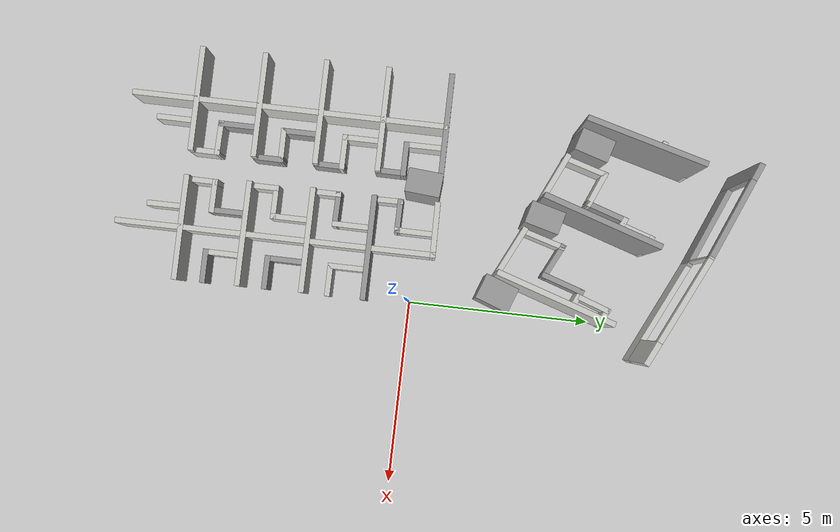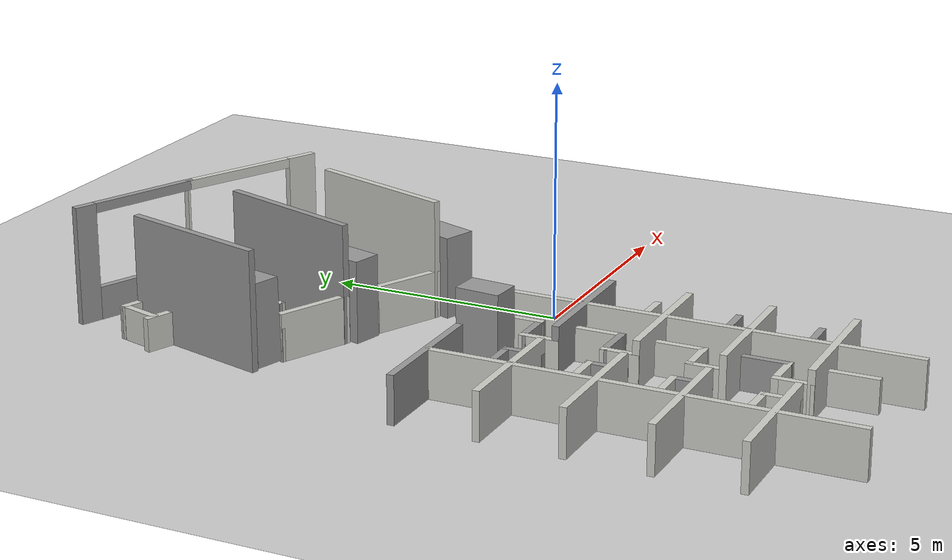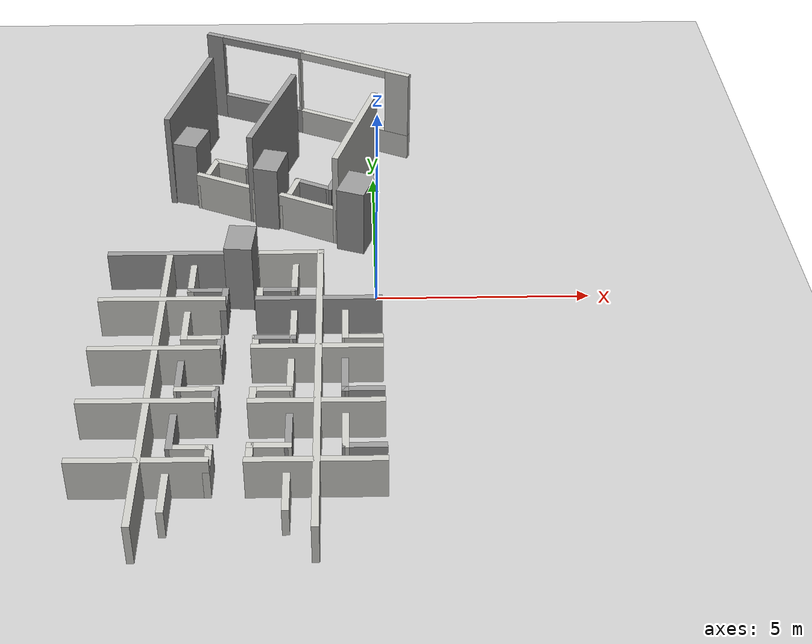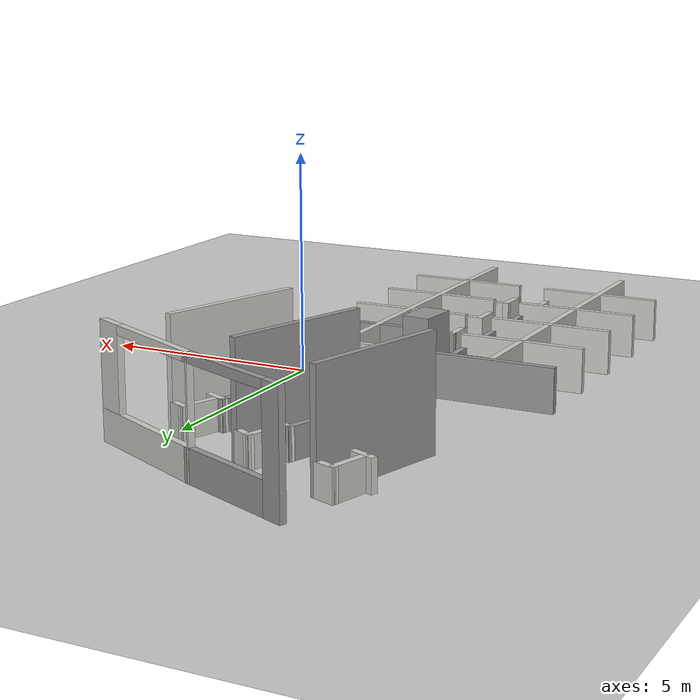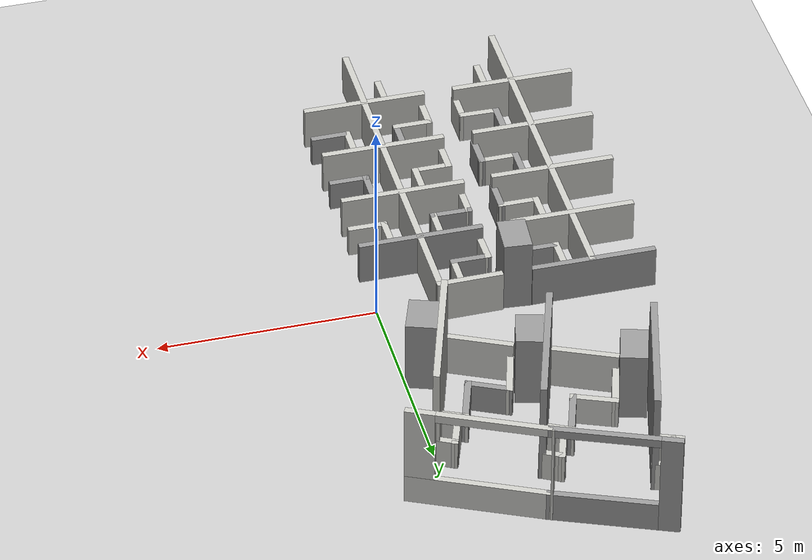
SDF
<sdf version="1.7">
 <world name="default">
  <model name="ground_plane">
   <static>1</static>
   <link name="link">
    <collision name="collision">
     <geometry><plane><normal>0 0 1</normal><size>100 100</size></plane></geometry>
     <surface><friction><ode><mu>100</mu><mu2>50</mu2></ode></friction></surface>
    </collision>
    <visual name="visual">
     <cast_shadows>0</cast_shadows>
     <geometry><plane><normal>0 0 1</normal><size>100 100</size></plane></geometry>
     <material>
      <script><uri>file://media/materials/scripts/gazebo.material</uri><name>Gazebo/Grey</name></script>
     </material>
    </visual>
   </link>
  </model>
  <model name="batclab">
   <pose>-2.42536 -0.386876 0 0 -0 0</pose>
   <link name="Wall_106">
    <collision name="Wall_106_Collision">
     <geometry><box><size>2.865 0.15 1</size></box></geometry>
     <pose>0 0 0.5 0 -0 0</pose>
    </collision>
    <visual name="Wall_106_Visual">
     <pose>0 0 0.5 0 -0 0</pose>
     <geometry><box><size>2.865 0.15 1</size></box></geometry>
     <material>
      <script><uri>file://media/materials/scripts/gazebo.material</uri><name>Gazebo/CeilingTiled</name></script>
      <ambient>1 1 1 1</ambient>
     </material>
     <meta><layer>0</layer></meta>
    </visual>
    <pose>-2.42436 -5.95096 0 0 -0 0</pose>
   </link>
   <link name="Wall_128">
    <collision name="Wall_128_Collision">
     <geometry><box><size>1.13401 0.15 0.7</size></box></geometry>
     <pose>0 0 0.35 0 -0 0</pose>
    </collision>
    <visual name="Wall_128_Visual">
     <pose>0 0 0.35 0 -0 0</pose>
     <geometry><box><size>1.13401 0.15 0.7</size></box></geometry>
     <material>
      <script><uri>file://media/materials/scripts/gazebo.material</uri><name>Gazebo/CeilingTiled</name></script>
      <ambient>1 1 1 1</ambient>
     </material>
     <meta><layer>0</layer></meta>
    </visual>
    <pose>-1.86842 -6.49961 0 0 -0 -1.57486</pose>
   </link>
   <link name="Wall_136">
    <collision name="Wall_136_Collision">
     <geometry><box><size>1.15946 0.15 0.7</size></box></geometry>
     <pose>0 0 0.35 0 -0 0</pose>
    </collision>
    <visual name="Wall_136_Visual">
     <pose>0 0 0.35 0 -0 0</pose>
     <geometry><box><size>1.15946 0.15 0.7</size></box></geometry>
     <material>
      <script><uri>file://media/materials/scripts/gazebo.material</uri><name>Gazebo/Grey</name></script>
      <ambient>1 1 1 1</ambient>
     </material>
     <meta><layer>0</layer></meta>
    </visual>
    <pose>-1.86392 -4.77611 0 0 -0 -1.57377</pose>
   </link>
   <link name="Wall_137">
    <collision name="Wall_137_Collision">
     <geometry><box><size>0.957447 0.15 0.7</size></box></geometry>
     <pose>0 0 0.35 0 -0 0</pose>
    </collision>
    <visual name="Wall_137_Visual">
     <pose>0 0 0.35 0 -0 0</pose>
     <geometry><box><size>0.957447 0.15 0.7</size></box></geometry>
     <material>
      <script><uri>file://media/materials/scripts/gazebo.material</uri><name>Gazebo/CeilingTiled</name></script>
      <ambient>1 1 1 1</ambient>
     </material>
     <meta><layer>0</layer></meta>
    </visual>
    <pose>-1.46192 -5.28961 0 0 -0 -0.022301</pose>
   </link>
   <link name="Wall_138">
    <collision name="Wall_138_Collision">
     <geometry><box><size>0.804299 0.15 0.7</size></box></geometry>
     <pose>0 0 0.35 0 -0 0</pose>
    </collision>
    <visual name="Wall_138_Visual">
     <pose>0 0 0.35 0 -0 0</pose>
     <geometry><box><size>0.804299 0.15 0.7</size></box></geometry>
     <material>
      <script><uri>file://media/materials/scripts/gazebo.material</uri><name>Gazebo/CeilingTiled</name></script>
      <ambient>1 1 1 1</ambient>
     </material>
     <meta><layer>0</layer></meta>
    </visual>
    <pose>-1.05992 -5.62561 0 0 -0 -1.57538</pose>
   </link>
   <link name="Wall_144">
    <collision name="Wall_144_Collision">
     <geometry><box><size>1.08532 0.15 0.7</size></box></geometry>
     <pose>0 0 0.35 0 -0 0</pose>
    </collision>
    <visual name="Wall_144_Visual">
     <pose>0 0 0.35 0 -0 0</pose>
     <geometry><box><size>1.08532 0.15 0.7</size></box></geometry>
     <material>
      <script><uri>file://media/materials/scripts/gazebo.material</uri><name>Gazebo/Grey</name></script>
      <ambient>1 1 1 1</ambient>
     </material>
     <meta><layer>0</layer></meta>
    </visual>
    <pose>-1.85542 -3.07811 0 0 -0 -1.5708</pose>
   </link>
   <link name="Wall_145">
    <collision name="Wall_145_Collision">
     <geometry><box><size>0.957447 0.15 0.7</size></box></geometry>
     <pose>0 0 0.35 0 -0 0</pose>
    </collision>
    <visual name="Wall_145_Visual">
     <pose>0 0 0.35 0 -0 0</pose>
     <geometry><box><size>0.957447 0.15 0.7</size></box></geometry>
     <material>
      <script><uri>file://media/materials/scripts/gazebo.material</uri><name>Gazebo/CeilingTiled</name></script>
      <ambient>1 1 1 1</ambient>
     </material>
     <meta><layer>0</layer></meta>
    </visual>
    <pose>-1.45142 -3.54211 0 0 -0 0.008663</pose>
   </link>
   <link name="Wall_146">
    <collision name="Wall_146_Collision">
     <geometry><box><size>0.830012 0.15 0.7</size></box></geometry>
     <pose>0 0 0.35 0 -0 0</pose>
    </collision>
    <visual name="Wall_146_Visual">
     <pose>0 0 0.35 0 -0 0</pose>
     <geometry><box><size>0.830012 0.15 0.7</size></box></geometry>
     <material>
      <script><uri>file://media/materials/scripts/gazebo.material</uri><name>Gazebo/Grey</name></script>
      <ambient>1 1 1 1</ambient>
     </material>
     <meta><layer>0</layer></meta>
    </visual>
    <pose>-1.04942 -3.87861 0 0 -0 -1.57668</pose>
   </link>
   <link name="Wall_148">
    <collision name="Wall_148_Collision">
     <geometry><box><size>2.865 0.15 1</size></box></geometry>
     <pose>0 0 0.5 0 -0 0</pose>
    </collision>
    <visual name="Wall_148_Visual">
     <pose>0 0 0.5 0 -0 0</pose>
     <geometry><box><size>2.865 0.15 1</size></box></geometry>
     <material>
      <script><uri>file://media/materials/scripts/gazebo.material</uri><name>Gazebo/CeilingTiled</name></script>
      <ambient>1 1 1 1</ambient>
     </material>
     <meta><layer>0</layer></meta>
    </visual>
    <pose>-2.42292 -0.838607 0 0 -0 0</pose>
   </link>
   <link name="Wall_150">
    <collision name="Wall_150_Collision">
     <geometry><box><size>2.865 0.15 1</size></box></geometry>
     <pose>0 0 0.5 0 -0 0</pose>
    </collision>
    <visual name="Wall_150_Visual">
     <pose>0 0 0.5 0 -0 0</pose>
     <geometry><box><size>2.865 0.15 1</size></box></geometry>
     <material>
      <script><uri>file://media/materials/scripts/gazebo.material</uri><name>Gazebo/Grey</name></script>
      <ambient>1 1 1 1</ambient>
     </material>
     <meta><layer>0</layer></meta>
    </visual>
    <pose>1.09824 -0.837491 0 0 -0 0</pose>
   </link>
   <link name="Wall_152">
    <collision name="Wall_152_Collision">
     <geometry><box><size>2.865 0.15 1</size></box></geometry>
     <pose>0 0 0.5 0 -0 0</pose>
    </collision>
    <visual name="Wall_152_Visual">
     <pose>0 0 0.5 0 -0 0</pose>
     <geometry><box><size>2.865 0.15 1</size></box></geometry>
     <material>
      <script><uri>file://media/materials/scripts/gazebo.material</uri><name>Gazebo/CeilingTiled</name></script>
      <ambient>1 1 1 1</ambient>
     </material>
     <meta><layer>0</layer></meta>
    </visual>
    <pose>1.08208 -2.51461 0 0 -0 0</pose>
   </link>
   <link name="Wall_154">
    <collision name="Wall_154_Collision">
     <geometry><box><size>2.865 0.15 1</size></box></geometry>
     <pose>0 0 0.5 0 -0 0</pose>
    </collision>
    <visual name="Wall_154_Visual">
     <pose>0 0 0.5 0 -0 0</pose>
     <geometry><box><size>2.865 0.15 1</size></box></geometry>
     <material>
      <script><uri>file://media/materials/scripts/gazebo.material</uri><name>Gazebo/Grey</name></script>
      <ambient>1 1 1 1</ambient>
     </material>
     <meta><layer>0</layer></meta>
    </visual>
    <pose>-2.42906 0.887393 0 0 -0 0</pose>
   </link>
   <link name="Wall_156">
    <collision name="Wall_156_Collision">
     <geometry><box><size>1.52505 0.15 1</size></box></geometry>
     <pose>0 0 0.5 0 -0 0</pose>
    </collision>
    <visual name="Wall_156_Visual">
     <pose>0 0 0.5 0 -0 0</pose>
     <geometry><box><size>1.52505 0.15 1</size></box></geometry>
     <material>
      <script><uri>file://media/materials/scripts/gazebo.material</uri><name>Gazebo/CeilingTiled</name></script>
      <ambient>1 1 1 1</ambient>
     </material>
     <meta><layer>0</layer></meta>
    </visual>
    <pose>0.42608 0.896735 0 0 -0 0.013588</pose>
   </link>
   <link name="Wall_158">
    <collision name="Wall_158_Collision">
     <geometry><box><size>2.865 0.15 1</size></box></geometry>
     <pose>0 0 0.5 0 -0 0</pose>
    </collision>
    <visual name="Wall_158_Visual">
     <pose>0 0 0.5 0 -0 0</pose>
     <geometry><box><size>2.865 0.15 1</size></box></geometry>
     <material>
      <script><uri>file://media/materials/scripts/gazebo.material</uri><name>Gazebo/CeilingTiled</name></script>
      <ambient>1 1 1 1</ambient>
     </material>
     <meta><layer>0</layer></meta>
    </visual>
    <pose>1.09785 -4.25212 0 0 -0 0</pose>
   </link>
   <link name="Wall_160">
    <collision name="Wall_160_Collision">
     <geometry><box><size>2.865 0.15 1</size></box></geometry>
     <pose>0 0 0.5 0 -0 0</pose>
    </collision>
    <visual name="Wall_160_Visual">
     <pose>0 0 0.5 0 -0 0</pose>
     <geometry><box><size>2.865 0.15 1</size></box></geometry>
     <material>
      <script><uri>file://media/materials/scripts/gazebo.material</uri><name>Gazebo/CeilingTiled</name></script>
      <ambient>1 1 1 1</ambient>
     </material>
     <meta><layer>0</layer></meta>
    </visual>
    <pose>1.11309 -5.96131 0 0 -0 0</pose>
   </link>
   <link name="Wall_178">
    <collision name="Wall_178_Collision">
     <geometry><box><size>1.12218 0.15 0.7</size></box></geometry>
     <pose>0 0 0.35 0 -0 0</pose>
    </collision>
    <visual name="Wall_178_Visual">
     <pose>0 0 0.35 0 -0 0</pose>
     <geometry><box><size>1.12218 0.15 0.7</size></box></geometry>
     <material>
      <script><uri>file://media/materials/scripts/gazebo.material</uri><name>Gazebo/CeilingTiled</name></script>
      <ambient>1 1 1 1</ambient>
     </material>
     <meta><layer>0</layer></meta>
    </visual>
    <pose>-1.85642 0.336393 0 0 -0 -1.5708</pose>
   </link>
   <link name="Wall_179">
    <collision name="Wall_179_Collision">
     <geometry><box><size>0.950104 0.15 0.7</size></box></geometry>
     <pose>0 0 0.35 0 -0 0</pose>
    </collision>
    <visual name="Wall_179_Visual">
     <pose>0 0 0.35 0 -0 0</pose>
     <geometry><box><size>0.950104 0.15 0.7</size></box></geometry>
     <material>
      <script><uri>file://media/materials/scripts/gazebo.material</uri><name>Gazebo/Grey</name></script>
      <ambient>1 1 1 1</ambient>
     </material>
     <meta><layer>0</layer></meta>
    </visual>
    <pose>-1.45642 -0.149607 0 0 -0 0</pose>
   </link>
   <link name="Wall_180">
    <collision name="Wall_180_Collision">
     <geometry><box><size>0.840012 0.15 0.7</size></box></geometry>
     <pose>0 0 0.35 0 -0 0</pose>
    </collision>
    <visual name="Wall_180_Visual">
     <pose>0 0 0.35 0 -0 0</pose>
     <geometry><box><size>0.840012 0.15 0.7</size></box></geometry>
     <material>
      <script><uri>file://media/materials/scripts/gazebo.material</uri><name>Gazebo/Grey</name></script>
      <ambient>1 1 1 1</ambient>
     </material>
     <meta><layer>0</layer></meta>
    </visual>
    <pose>-1.05842 -0.494607 0 0 -0 -1.57659</pose>
   </link>
   <link name="Wall_186">
    <collision name="Wall_186_Collision">
     <geometry><box><size>1.10448 0.15 0.7</size></box></geometry>
     <pose>0 0 0.35 0 -0 0</pose>
    </collision>
    <visual name="Wall_186_Visual">
     <pose>0 0 0.35 0 -0 0</pose>
     <geometry><box><size>1.10448 0.15 0.7</size></box></geometry>
     <material>
      <script><uri>file://media/materials/scripts/gazebo.material</uri><name>Gazebo/CeilingTiled</name></script>
      <ambient>1 1 1 1</ambient>
     </material>
     <meta><layer>0</layer></meta>
    </visual>
    <pose>-1.86542 -1.36811 0 0 -0 -1.5708</pose>
   </link>
   <link name="Wall_187">
    <collision name="Wall_187_Collision">
     <geometry><box><size>0.969551 0.15 0.7</size></box></geometry>
     <pose>0 0 0.35 0 -0 0</pose>
    </collision>
    <visual name="Wall_187_Visual">
     <pose>0 0 0.35 0 -0 0</pose>
     <geometry><box><size>0.969551 0.15 0.7</size></box></geometry>
     <material>
      <script><uri>file://media/materials/scripts/gazebo.material</uri><name>Gazebo/CeilingTiled</name></script>
      <ambient>1 1 1 1</ambient>
     </material>
     <meta><layer>0</layer></meta>
    </visual>
    <pose>-1.45592 -1.84561 0 0 -0 0</pose>
   </link>
   <link name="Wall_188">
    <collision name="Wall_188_Collision">
     <geometry><box><size>0.846185 0.15 0.7</size></box></geometry>
     <pose>0 0 0.35 0 -0 0</pose>
    </collision>
    <visual name="Wall_188_Visual">
     <pose>0 0 0.35 0 -0 0</pose>
     <geometry><box><size>0.846185 0.15 0.7</size></box></geometry>
     <material>
      <script><uri>file://media/materials/scripts/gazebo.material</uri><name>Gazebo/Grey</name></script>
      <ambient>1 1 1 1</ambient>
     </material>
     <meta><layer>0</layer></meta>
    </visual>
    <pose>-1.04942 -2.19361 0 0 -0 -1.57942</pose>
   </link>
   <link name="Wall_190">
    <collision name="Wall_190_Collision">
     <geometry><box><size>1.13603 0.15 0.7</size></box></geometry>
     <pose>0 0 0.35 0 -0 0</pose>
    </collision>
    <visual name="Wall_190_Visual">
     <pose>0 0 0.35 0 -0 0</pose>
     <geometry><box><size>1.13603 0.15 0.7</size></box></geometry>
     <material>
      <script><uri>file://media/materials/scripts/gazebo.material</uri><name>Gazebo/CeilingTiled</name></script>
      <ambient>1 1 1 1</ambient>
     </material>
     <meta><layer>0</layer></meta>
    </visual>
    <pose>0.52508 0.350393 0 0 -0 -1.5779</pose>
   </link>
   <link name="Wall_191">
    <collision name="Wall_191_Collision">
     <geometry><box><size>0.939019 0.15 0.7</size></box></geometry>
     <pose>0 0 0.35 0 -0 0</pose>
    </collision>
    <visual name="Wall_191_Visual">
     <pose>0 0 0.35 0 -0 0</pose>
     <geometry><box><size>0.939019 0.15 0.7</size></box></geometry>
     <material>
      <script><uri>file://media/materials/scripts/gazebo.material</uri><name>Gazebo/Grey</name></script>
      <ambient>1 1 1 1</ambient>
     </material>
     <meta><layer>0</layer></meta>
    </visual>
    <pose>0.12708 -0.139607 0 0 -0 3.13399</pose>
   </link>
   <link name="Wall_192">
    <collision name="Wall_192_Collision">
     <geometry><box><size>0.846592 0.15 0.7</size></box></geometry>
     <pose>0 0 0.35 0 -0 0</pose>
    </collision>
    <visual name="Wall_192_Visual">
     <pose>0 0 0.35 0 -0 0</pose>
     <geometry><box><size>0.846592 0.15 0.7</size></box></geometry>
     <material>
      <script><uri>file://media/materials/scripts/gazebo.material</uri><name>Gazebo/CeilingTiled</name></script>
      <ambient>1 1 1 1</ambient>
     </material>
     <meta><layer>0</layer></meta>
    </visual>
    <pose>-0.26392 -0.485107 0 0 -0 -1.56075</pose>
   </link>
   <link name="Wall_194">
    <collision name="Wall_194_Collision">
     <geometry><box><size>1.10401 0.15 0.7</size></box></geometry>
     <pose>0 0 0.35 0 -0 0</pose>
    </collision>
    <visual name="Wall_194_Visual">
     <pose>0 0 0.35 0 -0 0</pose>
     <geometry><box><size>1.10401 0.15 0.7</size></box></geometry>
     <material>
      <script><uri>file://media/materials/scripts/gazebo.material</uri><name>Gazebo/CeilingTiled</name></script>
      <ambient>1 1 1 1</ambient>
     </material>
     <meta><layer>0</layer></meta>
    </visual>
    <pose>0.53808 -1.37961 0 0 -0 -1.57604</pose>
   </link>
   <link name="Wall_195">
    <collision name="Wall_195_Collision">
     <geometry><box><size>0.966547 0.15 0.7</size></box></geometry>
     <pose>0 0 0.35 0 -0 0</pose>
    </collision>
    <visual name="Wall_195_Visual">
     <pose>0 0 0.35 0 -0 0</pose>
     <geometry><box><size>0.966547 0.15 0.7</size></box></geometry>
     <material>
      <script><uri>file://media/materials/scripts/gazebo.material</uri><name>Gazebo/Grey</name></script>
      <ambient>1 1 1 1</ambient>
     </material>
     <meta><layer>0</layer></meta>
    </visual>
    <pose>0.12708 -1.85011 0 0 -0 3.12568</pose>
   </link>
   <link name="Wall_196">
    <collision name="Wall_196_Collision">
     <geometry><box><size>0.813258 0.15 0.7</size></box></geometry>
     <pose>0 0 0.35 0 -0 0</pose>
    </collision>
    <visual name="Wall_196_Visual">
     <pose>0 0 0.35 0 -0 0</pose>
     <geometry><box><size>0.813258 0.15 0.7</size></box></geometry>
     <material>
      <script><uri>file://media/materials/scripts/gazebo.material</uri><name>Gazebo/CeilingTiled</name></script>
      <ambient>1 1 1 1</ambient>
     </material>
     <meta><layer>0</layer></meta>
    </visual>
    <pose>-0.28142 -2.17561 0 0 -0 -1.5708</pose>
   </link>
   <link name="Wall_198">
    <collision name="Wall_198_Collision">
     <geometry><box><size>1.08471 0.15 0.7</size></box></geometry>
     <pose>0 0 0.35 0 -0 0</pose>
    </collision>
    <visual name="Wall_198_Visual">
     <pose>0 0 0.35 0 -0 0</pose>
     <geometry><box><size>1.08471 0.15 0.7</size></box></geometry>
     <material>
      <script><uri>file://media/materials/scripts/gazebo.material</uri><name>Gazebo/CeilingTiled</name></script>
      <ambient>1 1 1 1</ambient>
     </material>
     <meta><layer>0</layer></meta>
    </visual>
    <pose>1.69258 -1.37011 0 0 -0 -1.5708</pose>
   </link>
   <link name="Wall_199">
    <collision name="Wall_199_Collision">
     <geometry><box><size>0.910697 0.15 0.7</size></box></geometry>
     <pose>0 0 0.35 0 -0 0</pose>
    </collision>
    <visual name="Wall_199_Visual">
     <pose>0 0 0.35 0 -0 0</pose>
     <geometry><box><size>0.910697 0.15 0.7</size></box></geometry>
     <material>
      <script><uri>file://media/materials/scripts/gazebo.material</uri><name>Gazebo/CeilingTiled</name></script>
      <ambient>1 1 1 1</ambient>
     </material>
     <meta><layer>0</layer></meta>
    </visual>
    <pose>2.07308 -1.84011 0 0 -0 -0.00657</pose>
   </link>
   <link name="Wall_202">
    <collision name="Wall_202_Collision">
     <geometry><box><size>1.15 0.15 0.7</size></box></geometry>
     <pose>0 0 0.35 0 -0 0</pose>
    </collision>
    <visual name="Wall_202_Visual">
     <pose>0 0 0.35 0 -0 0</pose>
     <geometry><box><size>1.15 0.15 0.7</size></box></geometry>
     <material>
      <script><uri>file://media/materials/scripts/gazebo.material</uri><name>Gazebo/CeilingTiled</name></script>
      <ambient>1 1 1 1</ambient>
     </material>
     <meta><layer>0</layer></meta>
    </visual>
    <pose>0.51808 -3.06261 0 0 -0 -1.5738</pose>
   </link>
   <link name="Wall_203">
    <collision name="Wall_203_Collision">
     <geometry><box><size>0.92443 0.15 0.7</size></box></geometry>
     <pose>0 0 0.35 0 -0 0</pose>
    </collision>
    <visual name="Wall_203_Visual">
     <pose>0 0 0.35 0 -0 0</pose>
     <geometry><box><size>0.92443 0.15 0.7</size></box></geometry>
     <material>
      <script><uri>file://media/materials/scripts/gazebo.material</uri><name>Gazebo/CeilingTiled</name></script>
      <ambient>1 1 1 1</ambient>
     </material>
     <meta><layer>0</layer></meta>
    </visual>
    <pose>0.12908 -3.56261 0 0 -0 3.14159</pose>
   </link>
   <link name="Wall_204">
    <collision name="Wall_204_Collision">
     <geometry><box><size>0.837965 0.15 0.7</size></box></geometry>
     <pose>0 0 0.35 0 -0 0</pose>
    </collision>
    <visual name="Wall_204_Visual">
     <pose>0 0 0.35 0 -0 0</pose>
     <geometry><box><size>0.837965 0.15 0.7</size></box></geometry>
     <material>
      <script><uri>file://media/materials/scripts/gazebo.material</uri><name>Gazebo/CeilingTiled</name></script>
      <ambient>1 1 1 1</ambient>
     </material>
     <meta><layer>0</layer></meta>
    </visual>
    <pose>-0.25842 -3.90661 0 0 -0 -1.5708</pose>
   </link>
   <link name="Wall_206">
    <collision name="Wall_206_Collision">
     <geometry><box><size>1.15002 0.15 0.7</size></box></geometry>
     <pose>0 0 0.35 0 -0 0</pose>
    </collision>
    <visual name="Wall_206_Visual">
     <pose>0 0 0.35 0 -0 0</pose>
     <geometry><box><size>1.15002 0.15 0.7</size></box></geometry>
     <material>
      <script><uri>file://media/materials/scripts/gazebo.material</uri><name>Gazebo/Grey</name></script>
      <ambient>1 1 1 1</ambient>
     </material>
     <meta><layer>0</layer></meta>
    </visual>
    <pose>1.67958 -3.07361 0 0 -0 -1.5748</pose>
   </link>
   <link name="Wall_207">
    <collision name="Wall_207_Collision">
     <geometry><box><size>0.928199 0.15 0.7</size></box></geometry>
     <pose>0 0 0.35 0 -0 0</pose>
    </collision>
    <visual name="Wall_207_Visual">
     <pose>0 0 0.35 0 -0 0</pose>
     <geometry><box><size>0.928199 0.15 0.7</size></box></geometry>
     <material>
      <script><uri>file://media/materials/scripts/gazebo.material</uri><name>Gazebo/Grey</name></script>
      <ambient>1 1 1 1</ambient>
     </material>
     <meta><layer>0</layer></meta>
    </visual>
    <pose>2.06658 -3.57361 0 0 -0 0</pose>
   </link>
   <link name="Wall_210">
    <collision name="Wall_210_Collision">
     <geometry><box><size>1.093 0.15 0.7</size></box></geometry>
     <pose>0 0 0.35 0 -0 0</pose>
    </collision>
    <visual name="Wall_210_Visual">
     <pose>0 0 0.35 0 -0 0</pose>
     <geometry><box><size>1.093 0.15 0.7</size></box></geometry>
     <material>
      <script><uri>file://media/materials/scripts/gazebo.material</uri><name>Gazebo/Grey</name></script>
      <ambient>1 1 1 1</ambient>
     </material>
     <meta><layer>0</layer></meta>
    </visual>
    <pose>0.53358 -4.78511 0 0 -0 -1.5708</pose>
   </link>
   <link name="Wall_211">
    <collision name="Wall_211_Collision">
     <geometry><box><size>0.924301 0.15 0.7</size></box></geometry>
     <pose>0 0 0.35 0 -0 0</pose>
    </collision>
    <visual name="Wall_211_Visual">
     <pose>0 0 0.35 0 -0 0</pose>
     <geometry><box><size>0.924301 0.15 0.7</size></box></geometry>
     <material>
      <script><uri>file://media/materials/scripts/gazebo.material</uri><name>Gazebo/CeilingTiled</name></script>
      <ambient>1 1 1 1</ambient>
     </material>
     <meta><layer>0</layer></meta>
    </visual>
    <pose>0.14658 -5.25461 0 0 -0 3.13643</pose>
   </link>
   <link name="Wall_212">
    <collision name="Wall_212_Collision">
     <geometry><box><size>0.850249 0.15 0.7</size></box></geometry>
     <pose>0 0 0.35 0 -0 0</pose>
    </collision>
    <visual name="Wall_212_Visual">
     <pose>0 0 0.35 0 -0 0</pose>
     <geometry><box><size>0.850249 0.15 0.7</size></box></geometry>
     <material>
      <script><uri>file://media/materials/scripts/gazebo.material</uri><name>Gazebo/CeilingTiled</name></script>
      <ambient>1 1 1 1</ambient>
     </material>
     <meta><layer>0</layer></meta>
    </visual>
    <pose>-0.24242 -5.60261 0 0 -0 -1.57651</pose>
   </link>
   <link name="Wall_214">
    <collision name="Wall_214_Collision">
     <geometry><box><size>1.1141 0.15 0.7</size></box></geometry>
     <pose>0 0 0.35 0 -0 0</pose>
    </collision>
    <visual name="Wall_214_Visual">
     <pose>0 0 0.35 0 -0 0</pose>
     <geometry><box><size>1.1141 0.15 0.7</size></box></geometry>
     <material>
      <script><uri>file://media/materials/scripts/gazebo.material</uri><name>Gazebo/CeilingTiled</name></script>
      <ambient>1 1 1 1</ambient>
     </material>
     <meta><layer>0</layer></meta>
    </visual>
    <pose>1.69058 -4.79361 0 0 -0 -1.57495</pose>
   </link>
   <link name="Wall_215">
    <collision name="Wall_215_Collision">
     <geometry><box><size>0.932733 0.15 0.7</size></box></geometry>
     <pose>0 0 0.35 0 -0 0</pose>
    </collision>
    <visual name="Wall_215_Visual">
     <pose>0 0 0.35 0 -0 0</pose>
     <geometry><box><size>0.932733 0.15 0.7</size></box></geometry>
     <material>
      <script><uri>file://media/materials/scripts/gazebo.material</uri><name>Gazebo/Grey</name></script>
      <ambient>1 1 1 1</ambient>
     </material>
     <meta><layer>0</layer></meta>
    </visual>
    <pose>2.07994 -5.27383 0 0 -0 0.004534</pose>
   </link>
   <link name="Wall_218">
    <collision name="Wall_218_Collision">
     <geometry><box><size>1.10501 0.15 0.7</size></box></geometry>
     <pose>0 0 0.35 0 -0 0</pose>
    </collision>
    <visual name="Wall_218_Visual">
     <pose>0 0 0.35 0 -0 0</pose>
     <geometry><box><size>1.10501 0.15 0.7</size></box></geometry>
     <material>
      <script><uri>file://media/materials/scripts/gazebo.material</uri><name>Gazebo/CeilingTiled</name></script>
      <ambient>1 1 1 1</ambient>
     </material>
     <meta><layer>0</layer></meta>
    </visual>
    <pose>0.52658 -6.48811 0 0 -0 -1.56661</pose>
   </link>
   <link name="Wall_28">
    <pose>-0.702967 8.44681 0 0 -0 -0.396081</pose>
    <visual name="Wall_28_Visual_0">
     <pose>-1.19676 0 1.25 0 -0 0</pose>
     <geometry><box><size>0.4765 0.15 2.5</size></box></geometry>
     <material>
      <script><uri>file://media/materials/scripts/gazebo.material</uri><name>Gazebo/Grey</name></script>
      <ambient>1 1 1 1</ambient>
     </material>
     <meta><layer>0</layer></meta>
    </visual>
    <collision name="Wall_28_Collision_0">
     <geometry><box><size>0.4765 0.15 2.5</size></box></geometry>
     <pose>-1.19676 0 1.25 0 -0 0</pose>
    </collision>
    <visual name="Wall_28_Visual_1">
     <pose>0.23825 0 0.35 0 -0 0</pose>
     <geometry><box><size>2.39353 0.15 0.7</size></box></geometry>
     <material>
      <script><uri>file://media/materials/scripts/gazebo.material</uri><name>Gazebo/Grey</name></script>
      <ambient>1 1 1 1</ambient>
     </material>
     <meta><layer>0</layer></meta>
    </visual>
    <collision name="Wall_28_Collision_1">
     <geometry><box><size>2.39353 0.15 0.7</size></box></geometry>
     <pose>0.23825 0 0.35 0 -0 0</pose>
    </collision>
    <visual name="Wall_28_Visual_2">
     <pose>0.23825 0 2.4 0 -0 0</pose>
     <geometry><box><size>2.39353 0.15 0.2</size></box></geometry>
     <material>
      <script><uri>file://media/materials/scripts/gazebo.material</uri><name>Gazebo/Grey</name></script>
      <ambient>1 1 1 1</ambient>
     </material>
     <meta><layer>0</layer></meta>
    </visual>
    <collision name="Wall_28_Collision_2">
     <geometry><box><size>2.39353 0.15 0.2</size></box></geometry>
     <pose>0.23825 0 2.4 0 -0 0</pose>
    </collision>
   </link>
   <link name="Wall_283">
    <collision name="Wall_283_Collision">
     <geometry><box><size>3.28849 0.15 2.5</size></box></geometry>
     <pose>0 0 1.25 0 -0 0</pose>
    </collision>
    <visual name="Wall_283_Visual">
     <pose>0 0 1.25 0 -0 0</pose>
     <geometry><box><size>3.28849 0.15 2.5</size></box></geometry>
     <material>
      <script><uri>file://media/materials/scripts/gazebo.material</uri><name>Gazebo/Grey</name></script>
      <ambient>1 1 1 1</ambient>
     </material>
     <meta><layer>0</layer></meta>
    </visual>
    <pose>-2.28392 6.03839 0 0 -0 1.30742</pose>
   </link>
   <link name="Wall_284">
    <collision name="Wall_284_Collision">
     <geometry><box><size>0.582307 0.15 0.7</size></box></geometry>
     <pose>0 0 0.35 0 -0 0</pose>
    </collision>
    <visual name="Wall_284_Visual">
     <pose>0 0 0.35 0 -0 0</pose>
     <geometry><box><size>0.582307 0.15 0.7</size></box></geometry>
     <material>
      <script><uri>file://media/materials/scripts/gazebo.material</uri><name>Gazebo/CeilingTiled</name></script>
      <ambient>1 1 1 1</ambient>
     </material>
     <meta><layer>0</layer></meta>
    </visual>
    <pose>-2.07792 7.62789 0 0 -0 2.78906</pose>
   </link>
   <link name="Wall_286">
    <collision name="Wall_286_Collision">
     <geometry><box><size>0.94636 0.15 0.7</size></box></geometry>
     <pose>0 0 0.35 0 -0 0</pose>
    </collision>
    <visual name="Wall_286_Visual">
     <pose>0 0 0.35 0 -0 0</pose>
     <geometry><box><size>0.94636 0.15 0.7</size></box></geometry>
     <material>
      <script><uri>file://media/materials/scripts/gazebo.material</uri><name>Gazebo/CeilingTiled</name></script>
      <ambient>1 1 1 1</ambient>
     </material>
     <meta><layer>0</layer></meta>
    </visual>
    <pose>-2.40092 7.27939 0 0 -0 1.29474</pose>
   </link>
   <link name="Wall_29">
    <pose>1.93575 7.26052 0 0 -0 -0.445911</pose>
    <visual name="Wall_29_Visual_0">
     <pose>-1.58312 0 1.25 0 -0 0</pose>
     <geometry><box><size>0.051753 0.15 2.5</size></box></geometry>
     <material>
      <script><uri>file://media/materials/scripts/gazebo.material</uri><name>Gazebo/CeilingTiled</name></script>
      <ambient>1 1 1 1</ambient>
     </material>
     <meta><layer>0</layer></meta>
    </visual>
    <collision name="Wall_29_Collision_0">
     <geometry><box><size>0.051753 0.15 2.5</size></box></geometry>
     <pose>-1.58312 0 1.25 0 -0 0</pose>
    </collision>
    <visual name="Wall_29_Visual_1">
     <pose>0.025877 0 0.35 0 -0 0</pose>
     <geometry><box><size>3.16623 0.15 0.7</size></box></geometry>
     <material>
      <script><uri>file://media/materials/scripts/gazebo.material</uri><name>Gazebo/CeilingTiled</name></script>
      <ambient>1 1 1 1</ambient>
     </material>
     <meta><layer>0</layer></meta>
    </visual>
    <collision name="Wall_29_Collision_1">
     <geometry><box><size>3.16623 0.15 0.7</size></box></geometry>
     <pose>0.025877 0 0.35 0 -0 0</pose>
    </collision>
    <visual name="Wall_29_Visual_2">
     <pose>1.27588 0 1.6 0 -0 0</pose>
     <geometry><box><size>0.666233 0.15 1.8</size></box></geometry>
     <material>
      <script><uri>file://media/materials/scripts/gazebo.material</uri><name>Gazebo/CeilingTiled</name></script>
      <ambient>1 1 1 1</ambient>
     </material>
     <meta><layer>0</layer></meta>
    </visual>
    <collision name="Wall_29_Collision_2">
     <geometry><box><size>0.666233 0.15 1.8</size></box></geometry>
     <pose>1.27588 0 1.6 0 -0 0</pose>
    </collision>
    <visual name="Wall_29_Visual_3">
     <pose>-0.30724 0 2.4 0 -0 0</pose>
     <geometry><box><size>2.5 0.15 0.2</size></box></geometry>
     <material>
      <script><uri>file://media/materials/scripts/gazebo.material</uri><name>Gazebo/CeilingTiled</name></script>
      <ambient>1 1 1 1</ambient>
     </material>
     <meta><layer>0</layer></meta>
    </visual>
    <collision name="Wall_29_Collision_3">
     <geometry><box><size>2.5 0.15 0.2</size></box></geometry>
     <pose>-0.30724 0 2.4 0 -0 0</pose>
    </collision>
   </link>
   <link name="Wall_292">
    <collision name="Wall_292_Collision">
     <geometry><box><size>0.696795 0.15 0.7</size></box></geometry>
     <pose>0 0 0.35 0 -0 0</pose>
    </collision>
    <visual name="Wall_292_Visual">
     <pose>0 0 0.35 0 -0 0</pose>
     <geometry><box><size>0.696795 0.15 0.7</size></box></geometry>
     <material>
      <script><uri>file://media/materials/scripts/gazebo.material</uri><name>Gazebo/CeilingTiled</name></script>
      <ambient>1 1 1 1</ambient>
     </material>
     <meta><layer>0</layer></meta>
    </visual>
    <pose>-2.39792 6.81339 0 0 -0 -0.374394</pose>
   </link>
   <link name="Wall_294">
    <collision name="Wall_294_Collision">
     <geometry><box><size>1.64708 0.15 1</size></box></geometry>
     <pose>0 0 0.5 0 -0 0</pose>
    </collision>
    <visual name="Wall_294_Visual">
     <pose>0 0 0.5 0 -0 0</pose>
     <geometry><box><size>1.64708 0.15 1</size></box></geometry>
     <material>
      <script><uri>file://media/materials/scripts/gazebo.material</uri><name>Gazebo/CeilingTiled</name></script>
      <ambient>1 1 1 1</ambient>
     </material>
     <meta><layer>0</layer></meta>
    </visual>
    <pose>-1.28292 3.94639 0 0 -0 -0.429889</pose>
   </link>
   <link name="Wall_295">
    <collision name="Wall_295_Collision">
     <geometry><box><size>3.27115 0.15 2.5</size></box></geometry>
     <pose>0 0 1.25 0 -0 0</pose>
    </collision>
    <visual name="Wall_295_Visual">
     <pose>0 0 1.25 0 -0 0</pose>
     <geometry><box><size>3.27115 0.15 2.5</size></box></geometry>
     <material>
      <script><uri>file://media/materials/scripts/gazebo.material</uri><name>Gazebo/Grey</name></script>
      <ambient>1 1 1 1</ambient>
     </material>
     <meta><layer>0</layer></meta>
    </visual>
    <pose>-0.12592 5.12039 0 0 -0 1.26049</pose>
   </link>
   <link name="Wall_298">
    <collision name="Wall_298_Collision">
     <geometry><box><size>1.30265 0.15 0.7</size></box></geometry>
     <pose>0 0 0.35 0 -0 0</pose>
    </collision>
    <visual name="Wall_298_Visual">
     <pose>0 0 0.35 0 -0 0</pose>
     <geometry><box><size>1.30265 0.15 0.7</size></box></geometry>
     <material>
      <script><uri>file://media/materials/scripts/gazebo.material</uri><name>Gazebo/CeilingTiled</name></script>
      <ambient>1 1 1 1</ambient>
     </material>
     <meta><layer>0</layer></meta>
    </visual>
    <pose>-1.79942 4.81089 0 0 -0 1.28225</pose>
   </link>
   <link name="Wall_299">
    <collision name="Wall_299_Collision">
     <geometry><box><size>1.06989 0.15 0.7</size></box></geometry>
     <pose>0 0 0.35 0 -0 0</pose>
    </collision>
    <visual name="Wall_299_Visual">
     <pose>0 0 0.35 0 -0 0</pose>
     <geometry><box><size>1.06989 0.15 0.7</size></box></geometry>
     <material>
      <script><uri>file://media/materials/scripts/gazebo.material</uri><name>Gazebo/CeilingTiled</name></script>
      <ambient>1 1 1 1</ambient>
     </material>
     <meta><layer>0</layer></meta>
    </visual>
    <pose>-1.21092 5.18589 0 0 -0 -0.396045</pose>
   </link>
   <link name="Wall_300">
    <collision name="Wall_300_Collision">
     <geometry><box><size>1.2354 0.15 0.7</size></box></geometry>
     <pose>0 0 0.35 0 -0 0</pose>
    </collision>
    <visual name="Wall_300_Visual">
     <pose>0 0 0.35 0 -0 0</pose>
     <geometry><box><size>1.2354 0.15 0.7</size></box></geometry>
     <material>
      <script><uri>file://media/materials/scripts/gazebo.material</uri><name>Gazebo/Grey</name></script>
      <ambient>1 1 1 1</ambient>
     </material>
     <meta><layer>0</layer></meta>
    </visual>
    <pose>-0.61892 5.52439 0 0 -0 1.25692</pose>
   </link>
   <link name="Wall_301">
    <collision name="Wall_301_Collision">
     <geometry><box><size>0.670477 0.15 0.7</size></box></geometry>
     <pose>0 0 0.35 0 -0 0</pose>
    </collision>
    <visual name="Wall_301_Visual">
     <pose>0 0 0.35 0 -0 0</pose>
     <geometry><box><size>0.670477 0.15 0.7</size></box></geometry>
     <material>
      <script><uri>file://media/materials/scripts/gazebo.material</uri><name>Gazebo/CeilingTiled</name></script>
      <ambient>1 1 1 1</ambient>
     </material>
     <meta><layer>0</layer></meta>
    </visual>
    <pose>-0.21792 5.92539 0 0 -0 -0.457634</pose>
   </link>
   <link name="Wall_303">
    <collision name="Wall_303_Collision">
     <geometry><box><size>0.578428 0.15 0.7</size></box></geometry>
     <pose>0 0 0.35 0 -0 0</pose>
    </collision>
    <visual name="Wall_303_Visual">
     <pose>0 0 0.35 0 -0 0</pose>
     <geometry><box><size>0.578428 0.15 0.7</size></box></geometry>
     <material>
      <script><uri>file://media/materials/scripts/gazebo.material</uri><name>Gazebo/CeilingTiled</name></script>
      <ambient>1 1 1 1</ambient>
     </material>
     <meta><layer>0</layer></meta>
    </visual>
    <pose>0.16208 6.70789 0 0 -0 2.64765</pose>
   </link>
   <link name="Wall_304">
    <collision name="Wall_304_Collision">
     <geometry><box><size>0.946355 0.15 0.7</size></box></geometry>
     <pose>0 0 0.35 0 -0 0</pose>
    </collision>
    <visual name="Wall_304_Visual">
     <pose>0 0 0.35 0 -0 0</pose>
     <geometry><box><size>0.946355 0.15 0.7</size></box></geometry>
     <material>
      <script><uri>file://media/materials/scripts/gazebo.material</uri><name>Gazebo/CeilingTiled</name></script>
      <ambient>1 1 1 1</ambient>
     </material>
     <meta><layer>0</layer></meta>
    </visual>
    <pose>-0.15142 6.43139 0 0 -0 -1.89016</pose>
   </link>
   <link name="Wall_306">
    <collision name="Wall_306_Collision">
     <geometry><box><size>1.63072 0.15 1</size></box></geometry>
     <pose>0 0 0.5 0 -0 0</pose>
    </collision>
    <visual name="Wall_306_Visual">
     <pose>0 0 0.5 0 -0 0</pose>
     <geometry><box><size>1.63072 0.15 1</size></box></geometry>
     <material>
      <script><uri>file://media/materials/scripts/gazebo.material</uri><name>Gazebo/CeilingTiled</name></script>
      <ambient>1 1 1 1</ambient>
     </material>
     <meta><layer>0</layer></meta>
    </visual>
    <pose>0.82108 2.98739 0 0 -0 -0.451269</pose>
   </link>
   <link name="Wall_307">
    <collision name="Wall_307_Collision">
     <geometry><box><size>3.26153 0.15 2.5</size></box></geometry>
     <pose>0 0 1.25 0 -0 0</pose>
    </collision>
    <visual name="Wall_307_Visual">
     <pose>0 0 1.25 0 -0 0</pose>
     <geometry><box><size>3.26153 0.15 2.5</size></box></geometry>
     <material>
      <script><uri>file://media/materials/scripts/gazebo.material</uri><name>Gazebo/CeilingTiled</name></script>
      <ambient>1 1 1 1</ambient>
     </material>
     <meta><layer>0</layer></meta>
    </visual>
    <pose>1.96408 4.14539 0 0 -0 1.25951</pose>
   </link>
   <link name="Wall_308">
    <collision name="Wall_308_Collision">
     <geometry><box><size>0.561702 0.15 0.7</size></box></geometry>
     <pose>0 0 0.35 0 -0 0</pose>
    </collision>
    <visual name="Wall_308_Visual">
     <pose>0 0 0.35 0 -0 0</pose>
     <geometry><box><size>0.561702 0.15 0.7</size></box></geometry>
     <material>
      <script><uri>file://media/materials/scripts/gazebo.material</uri><name>Gazebo/CeilingTiled</name></script>
      <ambient>1 1 1 1</ambient>
     </material>
     <meta><layer>0</layer></meta>
    </visual>
    <pose>2.25758 5.72089 0 0 -0 2.66492</pose>
   </link>
   <link name="Wall_309">
    <collision name="Wall_309_Collision">
     <geometry><box><size>0.945744 0.15 0.7</size></box></geometry>
     <pose>0 0 0.35 0 -0 0</pose>
    </collision>
    <visual name="Wall_309_Visual">
     <pose>0 0 0.35 0 -0 0</pose>
     <geometry><box><size>0.945744 0.15 0.7</size></box></geometry>
     <material>
      <script><uri>file://media/materials/scripts/gazebo.material</uri><name>Gazebo/CeilingTiled</name></script>
      <ambient>1 1 1 1</ambient>
     </material>
     <meta><layer>0</layer></meta>
    </visual>
    <pose>1.94008 5.44089 0 0 -0 -1.91559</pose>
   </link>
   <link name="Wall_311">
    <collision name="Wall_311_Collision">
     <geometry><box><size>1.30084 0.15 0.7</size></box></geometry>
     <pose>0 0 0.35 0 -0 0</pose>
    </collision>
    <visual name="Wall_311_Visual">
     <pose>0 0 0.35 0 -0 0</pose>
     <geometry><box><size>1.30084 0.15 0.7</size></box></geometry>
     <material>
      <script><uri>file://media/materials/scripts/gazebo.material</uri><name>Gazebo/CeilingTiled</name></script>
      <ambient>1 1 1 1</ambient>
     </material>
     <meta><layer>0</layer></meta>
    </visual>
    <pose>0.31708 3.86239 0 0 -0 1.2845</pose>
   </link>
   <link name="Wall_312">
    <collision name="Wall_312_Collision">
     <geometry><box><size>1.06545 0.15 0.7</size></box></geometry>
     <pose>0 0 0.35 0 -0 0</pose>
    </collision>
    <visual name="Wall_312_Visual">
     <pose>0 0 0.35 0 -0 0</pose>
     <geometry><box><size>1.06545 0.15 0.7</size></box></geometry>
     <material>
      <script><uri>file://media/materials/scripts/gazebo.material</uri><name>Gazebo/Grey</name></script>
      <ambient>1 1 1 1</ambient>
     </material>
     <meta><layer>0</layer></meta>
    </visual>
    <pose>0.89108 4.21389 0 0 -0 -0.453389</pose>
   </link>
   <link name="Wall_313">
    <collision name="Wall_313_Collision">
     <geometry><box><size>1.23847 0.15 0.7</size></box></geometry>
     <pose>0 0 0.35 0 -0 0</pose>
    </collision>
    <visual name="Wall_313_Visual">
     <pose>0 0 0.35 0 -0 0</pose>
     <geometry><box><size>1.23847 0.15 0.7</size></box></geometry>
     <material>
      <script><uri>file://media/materials/scripts/gazebo.material</uri><name>Gazebo/Grey</name></script>
      <ambient>1 1 1 1</ambient>
     </material>
     <meta><layer>0</layer></meta>
    </visual>
    <pose>1.47108 4.53089 0 0 -0 1.25602</pose>
   </link>
   <link name="Wall_314">
    <collision name="Wall_314_Collision">
     <geometry><box><size>0.664356 0.15 0.7</size></box></geometry>
     <pose>0 0 0.35 0 -0 0</pose>
    </collision>
    <visual name="Wall_314_Visual">
     <pose>0 0 0.35 0 -0 0</pose>
     <geometry><box><size>0.664356 0.15 0.7</size></box></geometry>
     <material>
      <script><uri>file://media/materials/scripts/gazebo.material</uri><name>Gazebo/CeilingTiled</name></script>
      <ambient>1 1 1 1</ambient>
     </material>
     <meta><layer>0</layer></meta>
    </visual>
    <pose>1.87408 4.94289 0 0 -0 -0.422765</pose>
   </link>
   <link name="Wall_65">
    <collision name="Wall_65_Collision">
     <geometry><box><size>8.63701 0.15 1</size></box></geometry>
     <pose>0 0 0.5 0 -0 0</pose>
    </collision>
    <visual name="Wall_65_Visual">
     <pose>0 0 0.5 0 -0 0</pose>
     <geometry><box><size>8.63701 0.15 1</size></box></geometry>
     <material>
      <script><uri>file://media/materials/scripts/gazebo.material</uri><name>Gazebo/CeilingTiled</name></script>
      <ambient>1 1 1 1</ambient>
     </material>
     <meta><layer>0</layer></meta>
    </visual>
    <pose>-2.40342 -3.39511 0 0 -0 -1.57197</pose>
   </link>
   <link name="Wall_67">
    <collision name="Wall_67_Collision">
     <geometry><box><size>8.72773 0.15 1</size></box></geometry>
     <pose>0 0 0.5 0 -0 0</pose>
    </collision>
    <visual name="Wall_67_Visual">
     <pose>0 0 0.5 0 -0 0</pose>
     <geometry><box><size>8.72773 0.15 1</size></box></geometry>
     <material>
      <script><uri>file://media/materials/scripts/gazebo.material</uri><name>Gazebo/CeilingTiled</name></script>
      <ambient>1 1 1 1</ambient>
     </material>
     <meta><layer>0</layer></meta>
    </visual>
    <pose>1.11623 -3.38563 0 0 -0 -1.57018</pose>
   </link>
   <link name="Wall_74">
    <collision name="Wall_74_Collision">
     <geometry><box><size>2.865 0.15 1</size></box></geometry>
     <pose>0 0 0.5 0 -0 0</pose>
    </collision>
    <visual name="Wall_74_Visual">
     <pose>0 0 0.5 0 -0 0</pose>
     <geometry><box><size>2.865 0.15 1</size></box></geometry>
     <material>
      <script><uri>file://media/materials/scripts/gazebo.material</uri><name>Gazebo/CeilingTiled</name></script>
      <ambient>1 1 1 1</ambient>
     </material>
     <meta><layer>0</layer></meta>
    </visual>
    <pose>-2.43315 -2.54658 0 0 -0 0</pose>
   </link>
   <link name="Wall_78">
    <collision name="Wall_78_Collision">
     <geometry><box><size>2.865 0.15 1</size></box></geometry>
     <pose>0 0 0.5 0 -0 0</pose>
    </collision>
    <visual name="Wall_78_Visual">
     <pose>0 0 0.5 0 -0 0</pose>
     <geometry><box><size>2.865 0.15 1</size></box></geometry>
     <material>
      <script><uri>file://media/materials/scripts/gazebo.material</uri><name>Gazebo/CeilingTiled</name></script>
      <ambient>1 1 1 1</ambient>
     </material>
     <meta><layer>0</layer></meta>
    </visual>
    <pose>-2.43892 -4.22861 0 0 -0 0</pose>
   </link>
   <static>1</static>
  </model>
  <model name="unit_box_0_clone_clone_clone">
   <pose>-4.62252 4.42638 0.887405 -0.033133 0.004636 -0.290498</pose>
   <link name="link">
    <inertial>
     <mass>1</mass>
     <inertia>
      <ixx>0.166667</ixx>
      <ixy>0</ixy>
      <ixz>0</ixz>
      <iyy>0.166667</iyy>
      <iyz>0</iyz>
      <izz>0.166667</izz>
     </inertia>
    </inertial>
    <collision name="collision"><geometry><box><size>0.613858 0.932743 1.73129</size></box></geometry></collision>
    <visual name="visual">
     <geometry><box><size>0.613858 0.932743 1.73129</size></box></geometry>
     <material>
      <script><name>Gazebo/Grey</name><uri>file://media/materials/scripts/gazebo.material</uri></script>
     </material>
    </visual>
   </link>
  </model>
  <model name="unit_box_0_clone_clone_clone_0">
   <pose>-2.56823 3.35201 0.865643 3e-06 1e-06 -0.258594</pose>
   <link name="link">
    <inertial>
     <mass>1</mass>
     <inertia>
      <ixx>0.166667</ixx>
      <ixy>0</ixy>
      <ixz>0</ixz>
      <iyy>0.166667</iyy>
      <iyz>0</iyz>
      <izz>0.166667</izz>
     </inertia>
    </inertial>
    <collision name="collision"><geometry><box><size>0.613858 0.932743 1.73129</size></box></geometry></collision>
    <visual name="visual">
     <geometry><box><size>0.613858 0.932743 1.73129</size></box></geometry>
     <material>
      <script><name>Gazebo/Grey</name><uri>file://media/materials/scripts/gazebo.material</uri></script>
     </material>
    </visual>
   </link>
  </model>
  <model name="unit_box_0_clone_clone_clone_1">
   <pose>-0.451313 2.31263 0.865645 -0 -0 -0.344837</pose>
   <link name="link">
    <inertial>
     <mass>1</mass>
     <inertia>
      <ixx>0.166667</ixx>
      <ixy>0</ixy>
      <ixz>0</ixz>
      <iyy>0.166667</iyy>
      <iyz>0</iyz>
      <izz>0.166667</izz>
     </inertia>
    </inertial>
    <collision name="collision"><geometry><box><size>0.697723 0.932743 1.73129</size></box></geometry></collision>
    <visual name="visual">
     <geometry><box><size>0.697723 0.932743 1.73129</size></box></geometry>
     <material>
      <script><name>Gazebo/Grey</name><uri>file://media/materials/scripts/gazebo.material</uri></script>
     </material>
    </visual>
   </link>
  </model>
  <model name="unit_box_0_clone_clone_clone_0_clone_clone_clone_clone_0_clone">
   <pose>-3.12945 0.089987 0.865645 0 0 -0.084066</pose>
   <link name="link">
    <inertial>
     <mass>1</mass>
     <inertia>
      <ixx>0.166667</ixx>
      <ixy>0</ixy>
      <ixz>0</ixz>
      <iyy>0.166667</iyy>
      <iyz>0</iyz>
      <izz>0.166667</izz>
     </inertia>
    </inertial>
    <collision name="collision"><geometry><box><size>0.63928 0.932743 1.73129</size></box></geometry></collision>
    <visual name="visual">
     <geometry><box><size>0.63928 0.932743 1.73129</size></box></geometry>
     <material>
      <script><name>Gazebo/Grey</name><uri>file://media/materials/scripts/gazebo.material</uri></script>
     </material>
    </visual>
   </link>
  </model>
 </world>
</sdf>
